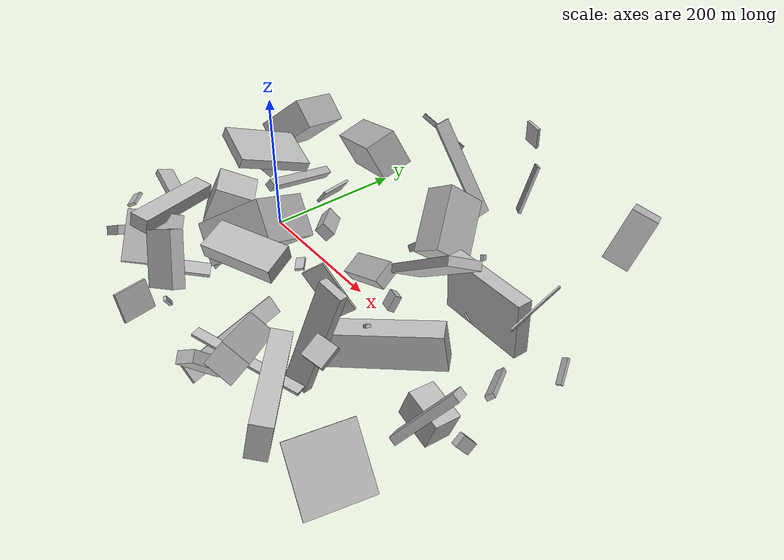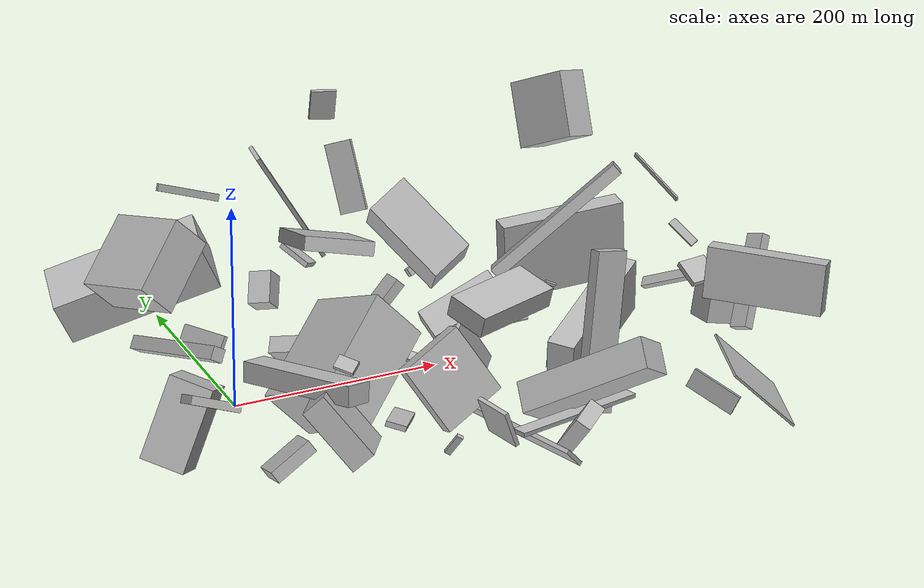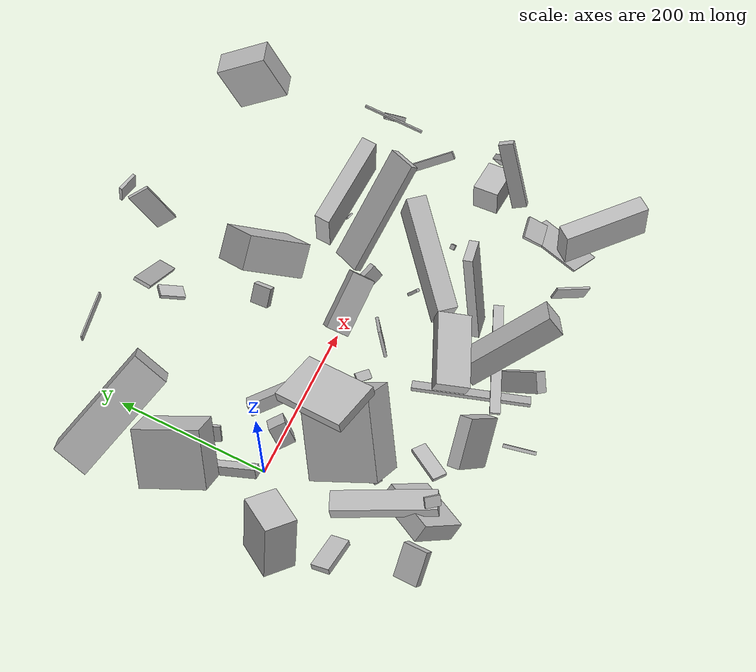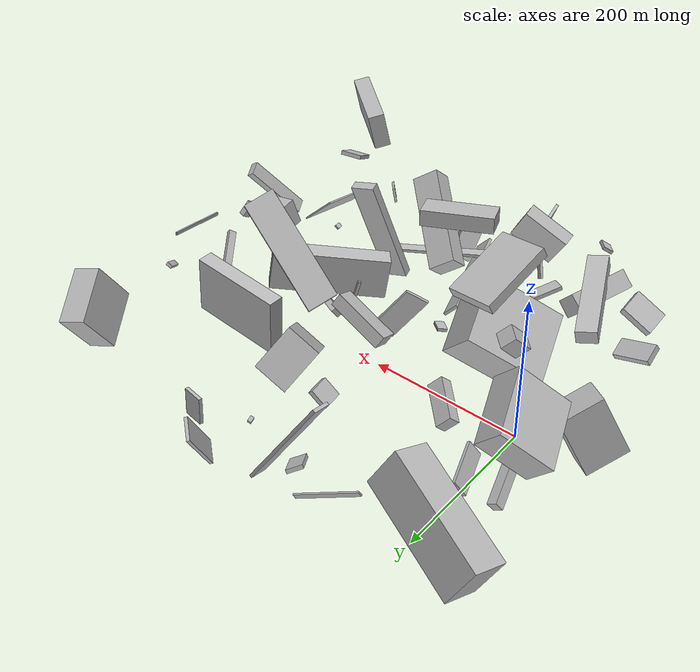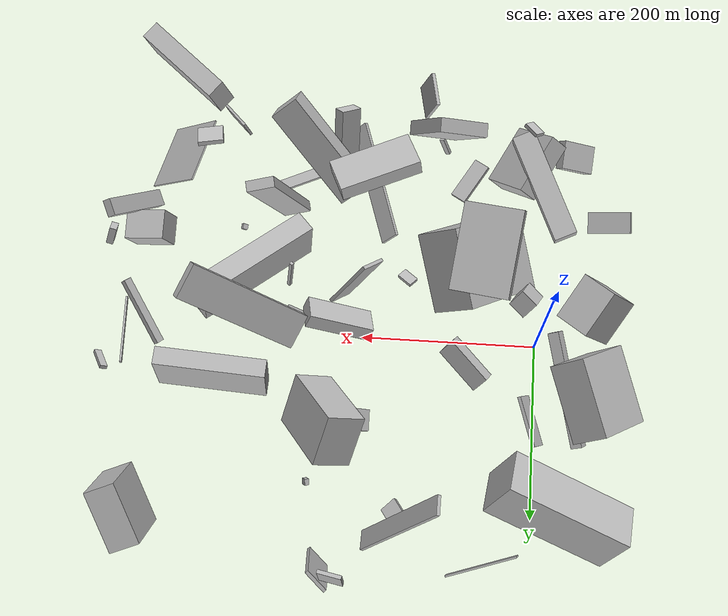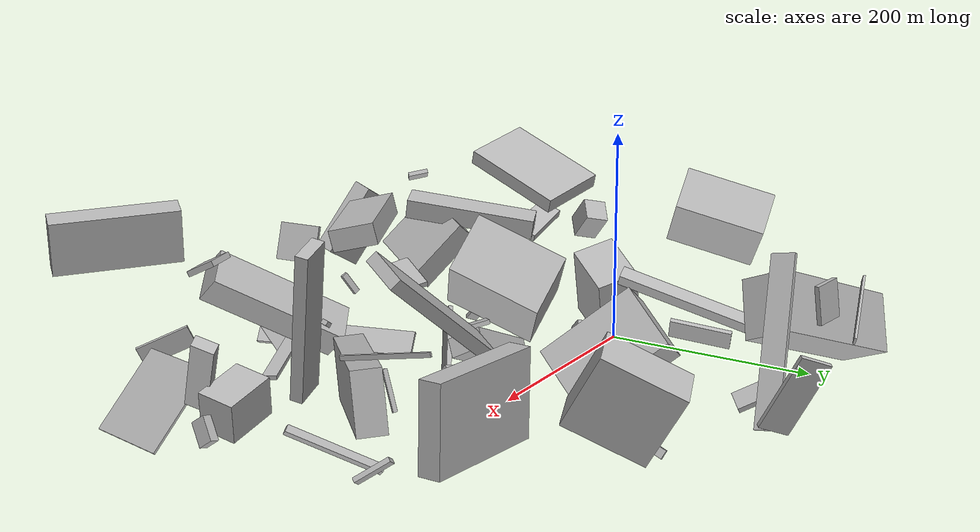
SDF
<sdf version="1.6">
 <world name="default">
  <scene>
   <sky><clouds><speed>12</speed></clouds></sky>
   <ambient>0.4 0.4 0.4 1</ambient>
   <background>0.7 0.7 0.7 1</background>
   <shadows>1</shadows>
  </scene>
  <gravity>0 0 -9.8066</gravity>
  <magnetic_field>6e-06 2.3e-05 -4.2e-05</magnetic_field>
  <physics default="0" name="default_physics" type="ode">
   <ode>
    <solver>
     <type>quick</type>
     <iters>10</iters>
     <sor>1.0</sor>
     <use_dynamic_moi_rescaling>0</use_dynamic_moi_rescaling>
    </solver>
    <constraints>
     <cfm>0</cfm>
     <erp>0.2</erp>
     <contact_max_correcting_vel>100</contact_max_correcting_vel>
     <contact_surface_layer>0.001</contact_surface_layer>
    </constraints>
   </ode>
   <max_step_size>0.004</max_step_size>
   <real_time_factor>1</real_time_factor>
   <real_time_update_rate>250</real_time_update_rate>
  </physics>
  <light name="sun" type="directional">
   <pose>0 0 10 0 0 0</pose>
   <diffuse>0.8 0.8 0.8 1</diffuse>
   <specular>0.2 0.2 0.2 1</specular>
   <attenuation>
    <range>1000</range>
    <constant>0.9</constant>
    <linear>0.01</linear>
    <quadratic>0.001</quadratic>
   </attenuation>
   <direction>-0.5 0.1 -0.9</direction>
  </light>
  <model name="building_1">
   <static>0</static>
   <pose>110.87790004432338 -53.24188051568231 94.22333397480159 2.5068408620857756 0.8228051280395813 -0.19276824860427832</pose>
   <link name="link">
    <gravity>0</gravity>
    <pose>0 0 53.5 0 0 0</pose>
    <collision name="collision"><geometry><box><size>59 90 107</size></box></geometry></collision>
    <visual name="visual">
     <cast_shadows>0</cast_shadows>
     <geometry><box><size>59 90 107</size></box></geometry>
     <material>
      <script>
       <uri>model://HANNAS_wall/materials/scripts</uri>
       <uri>model://HANNAS_wall/materials/textures</uri>
       <name>vrc/HANNAS_wall</name>
      </script>
     </material>
    </visual>
   </link>
  </model>
  <model name="building_2">
   <static>0</static>
   <pose>261.8608597708124 -194.5619067708049 82.06713264714543 2.518722187071173 0.5660903876009991 0.4732953769948904</pose>
   <link name="link">
    <gravity>0</gravity>
    <pose>0 0 15.0 0 0 0</pose>
    <collision name="collision"><geometry><box><size>36 130 30</size></box></geometry></collision>
    <visual name="visual">
     <cast_shadows>0</cast_shadows>
     <geometry><box><size>36 130 30</size></box></geometry>
     <material>
      <script>
       <uri>model://HANNAS_wall/materials/scripts</uri>
       <uri>model://HANNAS_wall/materials/textures</uri>
       <name>vrc/HANNAS_wall</name>
      </script>
     </material>
    </visual>
   </link>
  </model>
  <model name="building_3">
   <static>0</static>
   <pose>-33.39335200805992 -218.11148972509974 57.197525483966764 -0.5501454565734907 0.31658342347326385 1.4948273378747203</pose>
   <link name="link">
    <gravity>0</gravity>
    <pose>0 0 6.0 0 0 0</pose>
    <collision name="collision"><geometry><box><size>32 43 12</size></box></geometry></collision>
    <visual name="visual">
     <cast_shadows>0</cast_shadows>
     <geometry><box><size>32 43 12</size></box></geometry>
     <material>
      <script>
       <uri>model://HANNAS_wall/materials/scripts</uri>
       <uri>model://HANNAS_wall/materials/textures</uri>
       <name>vrc/HANNAS_wall</name>
      </script>
     </material>
    </visual>
   </link>
  </model>
  <model name="building_4">
   <static>0</static>
   <pose>204.35861504557252 -184.24623178134314 15.974237232097146 0.025261611333068944 0.7322438099507352 -2.8162123773716066</pose>
   <link name="link">
    <gravity>0</gravity>
    <pose>0 0 12.0 0 0 0</pose>
    <collision name="collision"><geometry><box><size>4 148 24</size></box></geometry></collision>
    <visual name="visual">
     <cast_shadows>0</cast_shadows>
     <geometry><box><size>4 148 24</size></box></geometry>
     <material>
      <script>
       <uri>model://HANNAS_wall/materials/scripts</uri>
       <uri>model://HANNAS_wall/materials/textures</uri>
       <name>vrc/HANNAS_wall</name>
      </script>
     </material>
    </visual>
   </link>
  </model>
  <model name="building_5">
   <static>0</static>
   <pose>5.155807179994983 -157.40373809105083 110.88821894323328 -2.9943276966943104 -0.1738441246064903 -2.7344338326067454</pose>
   <link name="link">
    <gravity>0</gravity>
    <pose>0 0 9.5 0 0 0</pose>
    <collision name="collision"><geometry><box><size>26 126 19</size></box></geometry></collision>
    <visual name="visual">
     <cast_shadows>0</cast_shadows>
     <geometry><box><size>26 126 19</size></box></geometry>
     <material>
      <script>
       <uri>model://HANNAS_wall/materials/scripts</uri>
       <uri>model://HANNAS_wall/materials/textures</uri>
       <name>vrc/HANNAS_wall</name>
      </script>
     </material>
    </visual>
   </link>
  </model>
  <model name="building_6">
   <static>0</static>
   <pose>414.3242527266592 226.61712862468613 126.72204953551757 1.860543423545474 0.4621385501675588 2.0435701022224957</pose>
   <link name="link">
    <gravity>0</gravity>
    <pose>0 0 16.5 0 0 0</pose>
    <collision name="collision"><geometry><box><size>67 65 33</size></box></geometry></collision>
    <visual name="visual">
     <cast_shadows>0</cast_shadows>
     <geometry><box><size>67 65 33</size></box></geometry>
     <material>
      <script>
       <uri>model://HANNAS_wall/materials/scripts</uri>
       <uri>model://HANNAS_wall/materials/textures</uri>
       <name>vrc/HANNAS_wall</name>
      </script>
     </material>
    </visual>
   </link>
  </model>
  <model name="building_7">
   <static>0</static>
   <pose>41.43289783135735 171.6966369192416 72.91046434596899 1.9521264216561809 0.38983727931817685 -1.738027119903437</pose>
   <link name="link">
    <gravity>0</gravity>
    <pose>0 0 75.0 0 0 0</pose>
    <collision name="collision"><geometry><box><size>49 56 150</size></box></geometry></collision>
    <visual name="visual">
     <cast_shadows>0</cast_shadows>
     <geometry><box><size>49 56 150</size></box></geometry>
     <material>
      <script>
       <uri>model://HANNAS_wall/materials/scripts</uri>
       <uri>model://HANNAS_wall/materials/textures</uri>
       <name>vrc/HANNAS_wall</name>
      </script>
     </material>
    </visual>
   </link>
  </model>
  <model name="building_8">
   <static>0</static>
   <pose>229.04437257766807 -16.850168135276114 49.09475317211565 0.7198131099501024 -0.9160495474271305 -2.213904137543864</pose>
   <link name="link">
    <gravity>0</gravity>
    <pose>0 0 15.5 0 0 0</pose>
    <collision name="collision"><geometry><box><size>17 76 31</size></box></geometry></collision>
    <visual name="visual">
     <cast_shadows>0</cast_shadows>
     <geometry><box><size>17 76 31</size></box></geometry>
     <material>
      <script>
       <uri>model://HANNAS_wall/materials/scripts</uri>
       <uri>model://HANNAS_wall/materials/textures</uri>
       <name>vrc/HANNAS_wall</name>
      </script>
     </material>
    </visual>
   </link>
  </model>
  <model name="building_9">
   <static>0</static>
   <pose>-38.80145807687066 57.55950555169893 41.98506808383015 2.636730698360245 -0.9159919105175511 0.6822038070621829</pose>
   <link name="link">
    <gravity>0</gravity>
    <pose>0 0 6.5 0 0 0</pose>
    <collision name="collision"><geometry><box><size>13 131 13</size></box></geometry></collision>
    <visual name="visual">
     <cast_shadows>0</cast_shadows>
     <geometry><box><size>13 131 13</size></box></geometry>
     <material>
      <script>
       <uri>model://HANNAS_wall/materials/scripts</uri>
       <uri>model://HANNAS_wall/materials/textures</uri>
       <name>vrc/HANNAS_wall</name>
      </script>
     </material>
    </visual>
   </link>
  </model>
  <model name="building_10">
   <static>0</static>
   <pose>179.67922126494622 -224.96690932714944 44.08030678043994 -2.9889524988025644 -1.4519594840975811 0.23177019996504591</pose>
   <link name="link">
    <gravity>0</gravity>
    <pose>0 0 75.0 0 0 0</pose>
    <collision name="collision"><geometry><box><size>4 13 150</size></box></geometry></collision>
    <visual name="visual">
     <cast_shadows>0</cast_shadows>
     <geometry><box><size>4 13 150</size></box></geometry>
     <material>
      <script>
       <uri>model://HANNAS_wall/materials/scripts</uri>
       <uri>model://HANNAS_wall/materials/textures</uri>
       <name>vrc/HANNAS_wall</name>
      </script>
     </material>
    </visual>
   </link>
  </model>
  <model name="building_11">
   <static>0</static>
   <pose>227.4924451806361 96.4216493116882 94.29325012884244 -2.449559634293384 0.6372856809538947 -0.9498619069525893</pose>
   <link name="link">
    <gravity>0</gravity>
    <pose>0 0 29.0 0 0 0</pose>
    <collision name="collision"><geometry><box><size>89 44 58</size></box></geometry></collision>
    <visual name="visual">
     <cast_shadows>0</cast_shadows>
     <geometry><box><size>89 44 58</size></box></geometry>
     <material>
      <script>
       <uri>model://HANNAS_wall/materials/scripts</uri>
       <uri>model://HANNAS_wall/materials/textures</uri>
       <name>vrc/HANNAS_wall</name>
      </script>
     </material>
    </visual>
   </link>
  </model>
  <model name="building_12">
   <static>0</static>
   <pose>338.2565149176056 -74.4521153954716 44.07206345566603 1.1678142461136996 -1.4090593512621696 -2.0145568816223878</pose>
   <link name="link">
    <gravity>0</gravity>
    <pose>0 0 13.0 0 0 0</pose>
    <collision name="collision"><geometry><box><size>55 150 26</size></box></geometry></collision>
    <visual name="visual">
     <cast_shadows>0</cast_shadows>
     <geometry><box><size>55 150 26</size></box></geometry>
     <material>
      <script>
       <uri>model://HANNAS_wall/materials/scripts</uri>
       <uri>model://HANNAS_wall/materials/textures</uri>
       <name>vrc/HANNAS_wall</name>
      </script>
     </material>
    </visual>
   </link>
  </model>
  <model name="building_13">
   <static>0</static>
   <pose>445.90205061828215 -138.55616657636892 51.640033656364196 0.6306837205070722 0.3505303543781692 1.973903833091411</pose>
   <link name="link">
    <gravity>0</gravity>
    <pose>0 0 45.0 0 0 0</pose>
    <collision name="collision"><geometry><box><size>19 10 90</size></box></geometry></collision>
    <visual name="visual">
     <cast_shadows>0</cast_shadows>
     <geometry><box><size>19 10 90</size></box></geometry>
     <material>
      <script>
       <uri>model://HANNAS_wall/materials/scripts</uri>
       <uri>model://HANNAS_wall/materials/textures</uri>
       <name>vrc/HANNAS_wall</name>
      </script>
     </material>
    </visual>
   </link>
  </model>
  <model name="building_14">
   <static>0</static>
   <pose>116.2617467925418 -226.30939376009073 48.8804757334936 -1.9464191680674607 0.9865759841869067 2.3500577233969957</pose>
   <link name="link">
    <gravity>0</gravity>
    <pose>0 0 2.0 0 0 0</pose>
    <collision name="collision"><geometry><box><size>22 6 4</size></box></geometry></collision>
    <visual name="visual">
     <cast_shadows>0</cast_shadows>
     <geometry><box><size>22 6 4</size></box></geometry>
     <material>
      <script>
       <uri>model://HANNAS_wall/materials/scripts</uri>
       <uri>model://HANNAS_wall/materials/textures</uri>
       <name>vrc/HANNAS_wall</name>
      </script>
     </material>
    </visual>
   </link>
  </model>
  <model name="building_15">
   <static>0</static>
   <pose>251.28029109279242 176.64769553366514 5.889785256707838 -0.7118583814906123 -0.9809770269375552 2.4535688985110116</pose>
   <link name="link">
    <gravity>0</gravity>
    <pose>0 0 3.5 0 0 0</pose>
    <collision name="collision"><geometry><box><size>8 5 7</size></box></geometry></collision>
    <visual name="visual">
     <cast_shadows>0</cast_shadows>
     <geometry><box><size>8 5 7</size></box></geometry>
     <material>
      <script>
       <uri>model://HANNAS_wall/materials/scripts</uri>
       <uri>model://HANNAS_wall/materials/textures</uri>
       <name>vrc/HANNAS_wall</name>
      </script>
     </material>
    </visual>
   </link>
  </model>
  <model name="building_16">
   <static>0</static>
   <pose>-39.09312593771146 83.36344171361984 103.89271173270991 0.352896991922375 0.6889836805163041 -2.55474018051567</pose>
   <link name="link">
    <gravity>0</gravity>
    <pose>0 0 21.0 0 0 0</pose>
    <collision name="collision"><geometry><box><size>74 84 42</size></box></geometry></collision>
    <visual name="visual">
     <cast_shadows>0</cast_shadows>
     <geometry><box><size>74 84 42</size></box></geometry>
     <material>
      <script>
       <uri>model://HANNAS_wall/materials/scripts</uri>
       <uri>model://HANNAS_wall/materials/textures</uri>
       <name>vrc/HANNAS_wall</name>
      </script>
     </material>
    </visual>
   </link>
  </model>
  <model name="building_17">
   <static>0</static>
   <pose>484.33486346712397 59.113552365929145 51.010093873382424 0.7917609644423096 0.7271432627302707 1.1264120064833707</pose>
   <link name="link">
    <gravity>0</gravity>
    <pose>0 0 4.0 0 0 0</pose>
    <collision name="collision"><geometry><box><size>4 31 8</size></box></geometry></collision>
    <visual name="visual">
     <cast_shadows>0</cast_shadows>
     <geometry><box><size>4 31 8</size></box></geometry>
     <material>
      <script>
       <uri>model://HANNAS_wall/materials/scripts</uri>
       <uri>model://HANNAS_wall/materials/textures</uri>
       <name>vrc/HANNAS_wall</name>
      </script>
     </material>
    </visual>
   </link>
  </model>
  <model name="building_18">
   <static>0</static>
   <pose>27.09077487703397 -217.83476970272264 137.3182739616443 -1.371702843323535 -0.5482730357817683 0.603687834159956</pose>
   <link name="link">
    <gravity>0</gravity>
    <pose>0 0 9.5 0 0 0</pose>
    <collision name="collision"><geometry><box><size>13 4 19</size></box></geometry></collision>
    <visual name="visual">
     <cast_shadows>0</cast_shadows>
     <geometry><box><size>13 4 19</size></box></geometry>
     <material>
      <script>
       <uri>model://HANNAS_wall/materials/scripts</uri>
       <uri>model://HANNAS_wall/materials/textures</uri>
       <name>vrc/HANNAS_wall</name>
      </script>
     </material>
    </visual>
   </link>
  </model>
  <model name="building_19">
   <static>0</static>
   <pose>367.6087120108322 -216.33874499789007 163.26483222175386 1.6027255648313687 0.1996637642238695 0.8593144337135826</pose>
   <link name="link">
    <gravity>0</gravity>
    <pose>0 0 53.5 0 0 0</pose>
    <collision name="collision"><geometry><box><size>21 47 107</size></box></geometry></collision>
    <visual name="visual">
     <cast_shadows>0</cast_shadows>
     <geometry><box><size>21 47 107</size></box></geometry>
     <material>
      <script>
       <uri>model://HANNAS_wall/materials/scripts</uri>
       <uri>model://HANNAS_wall/materials/textures</uri>
       <name>vrc/HANNAS_wall</name>
      </script>
     </material>
    </visual>
   </link>
  </model>
  <model name="building_20">
   <static>0</static>
   <pose>186.19900064053283 -135.8985592227172 143.3627081777271 1.7956474600809613 0.039376392051216215 0.41138501443990755</pose>
   <link name="link">
    <gravity>0</gravity>
    <pose>0 0 20.5 0 0 0</pose>
    <collision name="collision"><geometry><box><size>92 20 41</size></box></geometry></collision>
    <visual name="visual">
     <cast_shadows>0</cast_shadows>
     <geometry><box><size>92 20 41</size></box></geometry>
     <material>
      <script>
       <uri>model://HANNAS_wall/materials/scripts</uri>
       <uri>model://HANNAS_wall/materials/textures</uri>
       <name>vrc/HANNAS_wall</name>
      </script>
     </material>
    </visual>
   </link>
  </model>
  <model name="building_21">
   <static>0</static>
   <pose>150.96251111351728 -59.76774716618476 44.62781126307132 -0.18701203292036464 -0.18992971132085235 2.4308165051576687</pose>
   <link name="link">
    <gravity>0</gravity>
    <pose>0 0 2.0 0 0 0</pose>
    <collision name="collision"><geometry><box><size>19 12 4</size></box></geometry></collision>
    <visual name="visual">
     <cast_shadows>0</cast_shadows>
     <geometry><box><size>19 12 4</size></box></geometry>
     <material>
      <script>
       <uri>model://HANNAS_wall/materials/scripts</uri>
       <uri>model://HANNAS_wall/materials/textures</uri>
       <name>vrc/HANNAS_wall</name>
      </script>
     </material>
    </visual>
   </link>
  </model>
  <model name="building_22">
   <static>0</static>
   <pose>145.67102667905354 213.7425246404132 77.83182524007395 1.3507198268570193 0.5142457553620545 3.0042884904075655</pose>
   <link name="link">
    <gravity>0</gravity>
    <pose>0 0 11.0 0 0 0</pose>
    <collision name="collision"><geometry><box><size>4 150 22</size></box></geometry></collision>
    <visual name="visual">
     <cast_shadows>0</cast_shadows>
     <geometry><box><size>4 150 22</size></box></geometry>
     <material>
      <script>
       <uri>model://HANNAS_wall/materials/scripts</uri>
       <uri>model://HANNAS_wall/materials/textures</uri>
       <name>vrc/HANNAS_wall</name>
      </script>
     </material>
    </visual>
   </link>
  </model>
  <model name="building_23">
   <static>0</static>
   <pose>286.5752682659627 -12.490462806502464 47.03990974439591 1.8182688496361603 -0.5698290515890616 -2.0190133407947846</pose>
   <link name="link">
    <gravity>0</gravity>
    <pose>0 0 9.5 0 0 0</pose>
    <collision name="collision"><geometry><box><size>9 21 19</size></box></geometry></collision>
    <visual name="visual">
     <cast_shadows>0</cast_shadows>
     <geometry><box><size>9 21 19</size></box></geometry>
     <material>
      <script>
       <uri>model://HANNAS_wall/materials/scripts</uri>
       <uri>model://HANNAS_wall/materials/textures</uri>
       <name>vrc/HANNAS_wall</name>
      </script>
     </material>
    </visual>
   </link>
  </model>
  <model name="building_24">
   <static>0</static>
   <pose>98.41332956999808 -208.80710769048477 137.72690463221403 2.636308610985758 0.3694475611615156 1.5547296000121176</pose>
   <link name="link">
    <gravity>0</gravity>
    <pose>0 0 34.5 0 0 0</pose>
    <collision name="collision"><geometry><box><size>16 61 69</size></box></geometry></collision>
    <visual name="visual">
     <cast_shadows>0</cast_shadows>
     <geometry><box><size>16 61 69</size></box></geometry>
     <material>
      <script>
       <uri>model://HANNAS_wall/materials/scripts</uri>
       <uri>model://HANNAS_wall/materials/textures</uri>
       <name>vrc/HANNAS_wall</name>
      </script>
     </material>
    </visual>
   </link>
  </model>
  <model name="building_25">
   <static>0</static>
   <pose>18.6725365289505 -25.21989280413579 110.56559391870141 0.7233516496793572 0.21281919425275805 2.428936098837443</pose>
   <link name="link">
    <gravity>0</gravity>
    <pose>0 0 15.0 0 0 0</pose>
    <collision name="collision"><geometry><box><size>21 21 30</size></box></geometry></collision>
    <visual name="visual">
     <cast_shadows>0</cast_shadows>
     <geometry><box><size>21 21 30</size></box></geometry>
     <material>
      <script>
       <uri>model://HANNAS_wall/materials/scripts</uri>
       <uri>model://HANNAS_wall/materials/textures</uri>
       <name>vrc/HANNAS_wall</name>
      </script>
     </material>
    </visual>
   </link>
  </model>
  <model name="building_26">
   <static>0</static>
   <pose>285.65057795262976 -63.284480506251505 25.613973351119075 1.946084746181446 1.210958247687359 1.2882511830011918</pose>
   <link name="link">
    <gravity>0</gravity>
    <pose>0 0 2.0 0 0 0</pose>
    <collision name="collision"><geometry><box><size>38 4 4</size></box></geometry></collision>
    <visual name="visual">
     <cast_shadows>0</cast_shadows>
     <geometry><box><size>38 4 4</size></box></geometry>
     <material>
      <script>
       <uri>model://HANNAS_wall/materials/scripts</uri>
       <uri>model://HANNAS_wall/materials/textures</uri>
       <name>vrc/HANNAS_wall</name>
      </script>
     </material>
    </visual>
   </link>
  </model>
  <model name="building_27">
   <static>0</static>
   <pose>77.19913267370302 -175.19288718470804 58.69941663984494 1.7844952352634778 0.23552517952157714 0.9989948161044255</pose>
   <link name="link">
    <gravity>0</gravity>
    <pose>0 0 9.5 0 0 0</pose>
    <collision name="collision"><geometry><box><size>49 5 19</size></box></geometry></collision>
    <visual name="visual">
     <cast_shadows>0</cast_shadows>
     <geometry><box><size>49 5 19</size></box></geometry>
     <material>
      <script>
       <uri>model://HANNAS_wall/materials/scripts</uri>
       <uri>model://HANNAS_wall/materials/textures</uri>
       <name>vrc/HANNAS_wall</name>
      </script>
     </material>
    </visual>
   </link>
  </model>
  <model name="building_28">
   <static>0</static>
   <pose>237.50708155624451 -242.90389273192972 40.133529303516696 -0.9642603545429071 -0.4347274518134616 0.5404573689644305</pose>
   <link name="link">
    <gravity>0</gravity>
    <pose>0 0 7.5 0 0 0</pose>
    <collision name="collision"><geometry><box><size>26 65 15</size></box></geometry></collision>
    <visual name="visual">
     <cast_shadows>0</cast_shadows>
     <geometry><box><size>26 65 15</size></box></geometry>
     <material>
      <script>
       <uri>model://HANNAS_wall/materials/scripts</uri>
       <uri>model://HANNAS_wall/materials/textures</uri>
       <name>vrc/HANNAS_wall</name>
      </script>
     </material>
    </visual>
   </link>
  </model>
  <model name="building_29">
   <static>0</static>
   <pose>156.43455631996886 215.12143662966022 26.530233491557834 0.8560706810172527 -0.989571537375995 -0.2029512119445203</pose>
   <link name="link">
    <gravity>0</gravity>
    <pose>0 0 10.0 0 0 0</pose>
    <collision name="collision"><geometry><box><size>5 33 20</size></box></geometry></collision>
    <visual name="visual">
     <cast_shadows>0</cast_shadows>
     <geometry><box><size>5 33 20</size></box></geometry>
     <material>
      <script>
       <uri>model://HANNAS_wall/materials/scripts</uri>
       <uri>model://HANNAS_wall/materials/textures</uri>
       <name>vrc/HANNAS_wall</name>
      </script>
     </material>
    </visual>
   </link>
  </model>
  <model name="building_30">
   <static>0</static>
   <pose>-50.483228755319004 -130.31848599567465 73.33725403106764 -1.1920266639862434 0.3801471399196061 1.6277950468351832</pose>
   <link name="link">
    <gravity>0</gravity>
    <pose>0 0 24.0 0 0 0</pose>
    <collision name="collision"><geometry><box><size>24 8 48</size></box></geometry></collision>
    <visual name="visual">
     <cast_shadows>0</cast_shadows>
     <geometry><box><size>24 8 48</size></box></geometry>
     <material>
      <script>
       <uri>model://HANNAS_wall/materials/scripts</uri>
       <uri>model://HANNAS_wall/materials/textures</uri>
       <name>vrc/HANNAS_wall</name>
      </script>
     </material>
    </visual>
   </link>
  </model>
  <model name="building_31">
   <static>0</static>
   <pose>76.49639085953548 -6.024908596975024 159.071670670908 -0.5141596145795579 1.1610382979145104 -2.250574611930018</pose>
   <link name="link">
    <gravity>0</gravity>
    <pose>0 0 47.0 0 0 0</pose>
    <collision name="collision"><geometry><box><size>13 64 94</size></box></geometry></collision>
    <visual name="visual">
     <cast_shadows>0</cast_shadows>
     <geometry><box><size>13 64 94</size></box></geometry>
     <material>
      <script>
       <uri>model://HANNAS_wall/materials/scripts</uri>
       <uri>model://HANNAS_wall/materials/textures</uri>
       <name>vrc/HANNAS_wall</name>
      </script>
     </material>
    </visual>
   </link>
  </model>
  <model name="building_32">
   <static>0</static>
   <pose>361.7483867969904 77.58028782840269 59.31899345263845 -1.8305914094509894 -1.5198799979571969 -2.9303831295006706</pose>
   <link name="link">
    <gravity>0</gravity>
    <pose>0 0 10.0 0 0 0</pose>
    <collision name="collision"><geometry><box><size>77 122 20</size></box></geometry></collision>
    <visual name="visual">
     <cast_shadows>0</cast_shadows>
     <geometry><box><size>77 122 20</size></box></geometry>
     <material>
      <script>
       <uri>model://HANNAS_wall/materials/scripts</uri>
       <uri>model://HANNAS_wall/materials/textures</uri>
       <name>vrc/HANNAS_wall</name>
      </script>
     </material>
    </visual>
   </link>
  </model>
  <model name="building_33">
   <static>0</static>
   <pose>143.2402204656317 -271.5997619804067 71.01510694070231 0.0336077900824606 0.3289560988420458 -2.9341647426841204</pose>
   <link name="link">
    <gravity>0</gravity>
    <pose>0 0 18.0 0 0 0</pose>
    <collision name="collision"><geometry><box><size>4 40 36</size></box></geometry></collision>
    <visual name="visual">
     <cast_shadows>0</cast_shadows>
     <geometry><box><size>4 40 36</size></box></geometry>
     <material>
      <script>
       <uri>model://HANNAS_wall/materials/scripts</uri>
       <uri>model://HANNAS_wall/materials/textures</uri>
       <name>vrc/HANNAS_wall</name>
      </script>
     </material>
    </visual>
   </link>
  </model>
  <model name="building_34">
   <static>0</static>
   <pose>37.92520646176631 -216.32749954863954 49.94779693314253 0.7362070070076712 -0.2668631958362702 -2.077857556781189</pose>
   <link name="link">
    <gravity>0</gravity>
    <pose>0 0 33.5 0 0 0</pose>
    <collision name="collision"><geometry><box><size>70 24 67</size></box></geometry></collision>
    <visual name="visual">
     <cast_shadows>0</cast_shadows>
     <geometry><box><size>70 24 67</size></box></geometry>
     <material>
      <script>
       <uri>model://HANNAS_wall/materials/scripts</uri>
       <uri>model://HANNAS_wall/materials/textures</uri>
       <name>vrc/HANNAS_wall</name>
      </script>
     </material>
    </visual>
   </link>
  </model>
  <model name="building_35">
   <static>0</static>
   <pose>230.50611405519396 259.52969990387487 37.52292238990874 -0.3131551042824255 -0.36284956168665067 -0.722679269289284</pose>
   <link name="link">
    <gravity>0</gravity>
    <pose>0 0 35.0 0 0 0</pose>
    <collision name="collision"><geometry><box><size>28 4 70</size></box></geometry></collision>
    <visual name="visual">
     <cast_shadows>0</cast_shadows>
     <geometry><box><size>28 4 70</size></box></geometry>
     <material>
      <script>
       <uri>model://HANNAS_wall/materials/scripts</uri>
       <uri>model://HANNAS_wall/materials/textures</uri>
       <name>vrc/HANNAS_wall</name>
      </script>
     </material>
    </visual>
   </link>
  </model>
  <model name="building_36">
   <static>0</static>
   <pose>287.4695744463577 -140.33704886329377 81.84758274915053 2.476878338230964 -1.265132812438474 0.8489288620372825</pose>
   <link name="link">
    <gravity>0</gravity>
    <pose>0 0 16.0 0 0 0</pose>
    <collision name="collision"><geometry><box><size>150 12 32</size></box></geometry></collision>
    <visual name="visual">
     <cast_shadows>0</cast_shadows>
     <geometry><box><size>150 12 32</size></box></geometry>
     <material>
      <script>
       <uri>model://HANNAS_wall/materials/scripts</uri>
       <uri>model://HANNAS_wall/materials/textures</uri>
       <name>vrc/HANNAS_wall</name>
      </script>
     </material>
    </visual>
   </link>
  </model>
  <model name="building_37">
   <static>0</static>
   <pose>335.7293919320282 26.354057680843823 113.55417744614232 1.1236349299435695 -0.67626962915241 -0.16488113469341056</pose>
   <link name="link">
    <gravity>0</gravity>
    <pose>0 0 20.0 0 0 0</pose>
    <collision name="collision"><geometry><box><size>150 11 40</size></box></geometry></collision>
    <visual name="visual">
     <cast_shadows>0</cast_shadows>
     <geometry><box><size>150 11 40</size></box></geometry>
     <material>
      <script>
       <uri>model://HANNAS_wall/materials/scripts</uri>
       <uri>model://HANNAS_wall/materials/textures</uri>
       <name>vrc/HANNAS_wall</name>
      </script>
     </material>
    </visual>
   </link>
  </model>
  <model name="building_38">
   <static>0</static>
   <pose>490.72045193951953 -97.00538707115945 61.96618849076273 2.842352849262384 -0.629689419148667 1.588826090975305</pose>
   <link name="link">
    <gravity>0</gravity>
    <pose>0 0 10.5 0 0 0</pose>
    <collision name="collision"><geometry><box><size>14 8 21</size></box></geometry></collision>
    <visual name="visual">
     <cast_shadows>0</cast_shadows>
     <geometry><box><size>14 8 21</size></box></geometry>
     <material>
      <script>
       <uri>model://HANNAS_wall/materials/scripts</uri>
       <uri>model://HANNAS_wall/materials/textures</uri>
       <name>vrc/HANNAS_wall</name>
      </script>
     </material>
    </visual>
   </link>
  </model>
  <model name="building_39">
   <static>0</static>
   <pose>45.23022780232795 -125.00010094733108 13.23568744005857 1.098602266660675 -0.7584695256104195 1.2310553839068068</pose>
   <link name="link">
    <gravity>0</gravity>
    <pose>0 0 5.5 0 0 0</pose>
    <collision name="collision"><geometry><box><size>12 4 11</size></box></geometry></collision>
    <visual name="visual">
     <cast_shadows>0</cast_shadows>
     <geometry><box><size>12 4 11</size></box></geometry>
     <material>
      <script>
       <uri>model://HANNAS_wall/materials/scripts</uri>
       <uri>model://HANNAS_wall/materials/textures</uri>
       <name>vrc/HANNAS_wall</name>
      </script>
     </material>
    </visual>
   </link>
  </model>
  <model name="building_40">
   <static>0</static>
   <pose>10.198710051769341 95.8076936780459 30.783244193397753 2.9616160514122343 0.580595750229607 0.22558641087035683</pose>
   <link name="link">
    <gravity>0</gravity>
    <pose>0 0 11.5 0 0 0</pose>
    <collision name="collision"><geometry><box><size>4 58 23</size></box></geometry></collision>
    <visual name="visual">
     <cast_shadows>0</cast_shadows>
     <geometry><box><size>4 58 23</size></box></geometry>
     <material>
      <script>
       <uri>model://HANNAS_wall/materials/scripts</uri>
       <uri>model://HANNAS_wall/materials/textures</uri>
       <name>vrc/HANNAS_wall</name>
      </script>
     </material>
    </visual>
   </link>
  </model>
  <model name="building_41">
   <static>0</static>
   <pose>197.8245276000013 116.38556683863345 27.54776798077416 1.3292123075528528 -0.758038532754228 0.1685616663141245</pose>
   <link name="link">
    <gravity>0</gravity>
    <pose>0 0 12.0 0 0 0</pose>
    <collision name="collision"><geometry><box><size>26 10 24</size></box></geometry></collision>
    <visual name="visual">
     <cast_shadows>0</cast_shadows>
     <geometry><box><size>26 10 24</size></box></geometry>
     <material>
      <script>
       <uri>model://HANNAS_wall/materials/scripts</uri>
       <uri>model://HANNAS_wall/materials/textures</uri>
       <name>vrc/HANNAS_wall</name>
      </script>
     </material>
    </visual>
   </link>
  </model>
  <model name="building_42">
   <static>0</static>
   <pose>444.5432309134139 -100.93958020373549 43.76231301996713 -0.17140655899269994 0.231689449735041 -0.04527139711454402</pose>
   <link name="link">
    <gravity>0</gravity>
    <pose>0 0 17.5 0 0 0</pose>
    <collision name="collision"><geometry><box><size>46 33 35</size></box></geometry></collision>
    <visual name="visual">
     <cast_shadows>0</cast_shadows>
     <geometry><box><size>46 33 35</size></box></geometry>
     <material>
      <script>
       <uri>model://HANNAS_wall/materials/scripts</uri>
       <uri>model://HANNAS_wall/materials/textures</uri>
       <name>vrc/HANNAS_wall</name>
      </script>
     </material>
    </visual>
   </link>
  </model>
  <model name="building_43">
   <static>0</static>
   <pose>77.08182304702805 26.76212018107358 23.033576450312047 -0.7948416939832628 -0.21648702615655535 -0.7638557570921368</pose>
   <link name="link">
    <gravity>0</gravity>
    <pose>0 0 8.0 0 0 0</pose>
    <collision name="collision"><geometry><box><size>58 22 16</size></box></geometry></collision>
    <visual name="visual">
     <cast_shadows>0</cast_shadows>
     <geometry><box><size>58 22 16</size></box></geometry>
     <material>
      <script>
       <uri>model://HANNAS_wall/materials/scripts</uri>
       <uri>model://HANNAS_wall/materials/textures</uri>
       <name>vrc/HANNAS_wall</name>
      </script>
     </material>
    </visual>
   </link>
  </model>
  <model name="building_44">
   <static>0</static>
   <pose>344.1208063915126 54.03459789791295 29.54211783163767 -1.0480982149595923 0.4753981991667696 -0.11498900076455996</pose>
   <link name="link">
    <gravity>0</gravity>
    <pose>0 0 1.0 0 0 0</pose>
    <collision name="collision"><geometry><box><size>12 3 2</size></box></geometry></collision>
    <visual name="visual">
     <cast_shadows>0</cast_shadows>
     <geometry><box><size>12 3 2</size></box></geometry>
     <material>
      <script>
       <uri>model://HANNAS_wall/materials/scripts</uri>
       <uri>model://HANNAS_wall/materials/textures</uri>
       <name>vrc/HANNAS_wall</name>
      </script>
     </material>
    </visual>
   </link>
  </model>
  <model name="building_45">
   <static>0</static>
   <pose>425.95307503124764 -205.09383806860112 34.89641348671857 2.3550812794776568 0.017717775548322268 -1.8198909215352133</pose>
   <link name="link">
    <gravity>0</gravity>
    <pose>0 0 1.0 0 0 0</pose>
    <collision name="collision"><geometry><box><size>80 80 2</size></box></geometry></collision>
    <visual name="visual">
     <cast_shadows>0</cast_shadows>
     <geometry><box><size>80 80 2</size></box></geometry>
     <material>
      <script>
       <uri>model://HANNAS_wall/materials/scripts</uri>
       <uri>model://HANNAS_wall/materials/textures</uri>
       <name>vrc/HANNAS_wall</name>
      </script>
     </material>
    </visual>
   </link>
  </model>
  <model name="building_46">
   <static>0</static>
   <pose>337.8236675541868 -92.62178431055632 93.29390443333027 -0.6320427973121616 0.1843926952460215 1.4358140876041623</pose>
   <link name="link">
    <gravity>0</gravity>
    <pose>0 0 2.0 0 0 0</pose>
    <collision name="collision"><geometry><box><size>6 6 4</size></box></geometry></collision>
    <visual name="visual">
     <cast_shadows>0</cast_shadows>
     <geometry><box><size>6 6 4</size></box></geometry>
     <material>
      <script>
       <uri>model://HANNAS_wall/materials/scripts</uri>
       <uri>model://HANNAS_wall/materials/textures</uri>
       <name>vrc/HANNAS_wall</name>
      </script>
     </material>
    </visual>
   </link>
  </model>
  <model name="building_47">
   <static>0</static>
   <pose>-50.69459351750244 -37.59533935980222 55.68986238574874 2.851836503639474 -0.4095454573816888 -2.145548273454158</pose>
   <link name="link">
    <gravity>0</gravity>
    <pose>0 0 40.0 0 0 0</pose>
    <collision name="collision"><geometry><box><size>57 42 80</size></box></geometry></collision>
    <visual name="visual">
     <cast_shadows>0</cast_shadows>
     <geometry><box><size>57 42 80</size></box></geometry>
     <material>
      <script>
       <uri>model://HANNAS_wall/materials/scripts</uri>
       <uri>model://HANNAS_wall/materials/textures</uri>
       <name>vrc/HANNAS_wall</name>
      </script>
     </material>
    </visual>
   </link>
  </model>
  <model name="building_48">
   <static>0</static>
   <pose>59.66879366603202 263.1147823343202 90.06374485731271 -2.0430790068382243 -1.0794212237776355 0.8047612130669644</pose>
   <link name="link">
    <gravity>0</gravity>
    <pose>0 0 1.0 0 0 0</pose>
    <collision name="collision"><geometry><box><size>7 80 2</size></box></geometry></collision>
    <visual name="visual">
     <cast_shadows>0</cast_shadows>
     <geometry><box><size>7 80 2</size></box></geometry>
     <material>
      <script>
       <uri>model://HANNAS_wall/materials/scripts</uri>
       <uri>model://HANNAS_wall/materials/textures</uri>
       <name>vrc/HANNAS_wall</name>
      </script>
     </material>
    </visual>
   </link>
  </model>
  <model name="building_49">
   <static>0</static>
   <pose>452.2302767393861 6.722239161768169 118.42453495726714 1.378806729835366 -0.021847990584314355 -3.062943320110881</pose>
   <link name="link">
    <gravity>0</gravity>
    <pose>0 0 39.0 0 0 0</pose>
    <collision name="collision"><geometry><box><size>2 4 78</size></box></geometry></collision>
    <visual name="visual">
     <cast_shadows>0</cast_shadows>
     <geometry><box><size>2 4 78</size></box></geometry>
     <material>
      <script>
       <uri>model://HANNAS_wall/materials/scripts</uri>
       <uri>model://HANNAS_wall/materials/textures</uri>
       <name>vrc/HANNAS_wall</name>
      </script>
     </material>
    </visual>
   </link>
  </model>
  <model name="building_50">
   <static>0</static>
   <pose>447.37691639358803 -5.966869446162345 39.67919396956924 -0.8983393593968765 -0.4385245231612276 -0.9954842142157387</pose>
   <link name="link">
    <gravity>0</gravity>
    <pose>0 0 5.0 0 0 0</pose>
    <collision name="collision"><geometry><box><size>80 6 10</size></box></geometry></collision>
    <visual name="visual">
     <cast_shadows>0</cast_shadows>
     <geometry><box><size>80 6 10</size></box></geometry>
     <material>
      <script>
       <uri>model://HANNAS_wall/materials/scripts</uri>
       <uri>model://HANNAS_wall/materials/textures</uri>
       <name>vrc/HANNAS_wall</name>
      </script>
     </material>
    </visual>
   </link>
  </model>
  <model name="building_51">
   <static>0</static>
   <pose>358.8927754390886 -242.44254367917347 46.64678727080523 0.40200820364625045 0.16356113339576994 0.7396484371816328</pose>
   <link name="link">
    <gravity>0</gravity>
    <pose>0 0 9.5 0 0 0</pose>
    <collision name="collision"><geometry><box><size>3 48 19</size></box></geometry></collision>
    <visual name="visual">
     <cast_shadows>0</cast_shadows>
     <geometry><box><size>3 48 19</size></box></geometry>
     <material>
      <script>
       <uri>model://HANNAS_wall/materials/scripts</uri>
       <uri>model://HANNAS_wall/materials/textures</uri>
       <name>vrc/HANNAS_wall</name>
      </script>
     </material>
    </visual>
   </link>
  </model>
  <model name="building_52">
   <static>0</static>
   <pose>210.38342397990712 292.7819081813378 127.71271665118411 0.09496585120573527 0.06959806861257344 -0.20267255140842816</pose>
   <link name="link">
    <gravity>0</gravity>
    <pose>0 0 15.5 0 0 0</pose>
    <collision name="collision"><geometry><box><size>25 4 31</size></box></geometry></collision>
    <visual name="visual">
     <cast_shadows>0</cast_shadows>
     <geometry><box><size>25 4 31</size></box></geometry>
     <material>
      <script>
       <uri>model://HANNAS_wall/materials/scripts</uri>
       <uri>model://HANNAS_wall/materials/textures</uri>
       <name>vrc/HANNAS_wall</name>
      </script>
     </material>
    </visual>
   </link>
  </model>
  <model name="building_53">
   <static>0</static>
   <pose>-61.43458863780529 208.37007113319316 35.219704158323395 -1.6720160868538854 -0.4773551452351531 -1.7113803626745043</pose>
   <link name="link">
    <gravity>0</gravity>
    <pose>0 0 15.0 0 0 0</pose>
    <collision name="collision"><geometry><box><size>30 3 30</size></box></geometry></collision>
    <visual name="visual">
     <cast_shadows>0</cast_shadows>
     <geometry><box><size>30 3 30</size></box></geometry>
     <material>
      <script>
       <uri>model://HANNAS_wall/materials/scripts</uri>
       <uri>model://HANNAS_wall/materials/textures</uri>
       <name>vrc/HANNAS_wall</name>
      </script>
     </material>
    </visual>
   </link>
  </model>
  <model name="building_54">
   <static>0</static>
   <pose>191.0644495650898 -66.80106289576106 68.74715919619854 2.9990667259366637 -0.6123704994407471 0.7516923038292957</pose>
   <link name="link">
    <gravity>0</gravity>
    <pose>0 0 37.0 0 0 0</pose>
    <collision name="collision"><geometry><box><size>33 4 74</size></box></geometry></collision>
    <visual name="visual">
     <cast_shadows>0</cast_shadows>
     <geometry><box><size>33 4 74</size></box></geometry>
     <material>
      <script>
       <uri>model://HANNAS_wall/materials/scripts</uri>
       <uri>model://HANNAS_wall/materials/textures</uri>
       <name>vrc/HANNAS_wall</name>
      </script>
     </material>
    </visual>
   </link>
  </model>
  <model name="building_55">
   <static>0</static>
   <pose>380.0915445046039 -190.2062771834769 136.83359483169505 -0.03187248547957983 -1.1085115002438393 -1.3693225985809077</pose>
   <link name="link">
    <gravity>0</gravity>
    <pose>0 0 13.0 0 0 0</pose>
    <collision name="collision"><geometry><box><size>5 28 26</size></box></geometry></collision>
    <visual name="visual">
     <cast_shadows>0</cast_shadows>
     <geometry><box><size>5 28 26</size></box></geometry>
     <material>
      <script>
       <uri>model://HANNAS_wall/materials/scripts</uri>
       <uri>model://HANNAS_wall/materials/textures</uri>
       <name>vrc/HANNAS_wall</name>
      </script>
     </material>
    </visual>
   </link>
  </model>
 </world>
</sdf>
